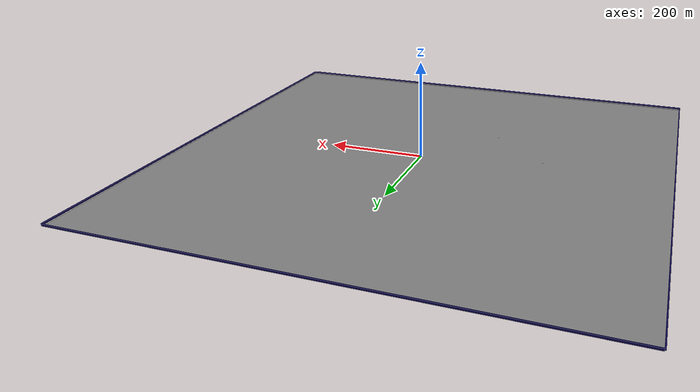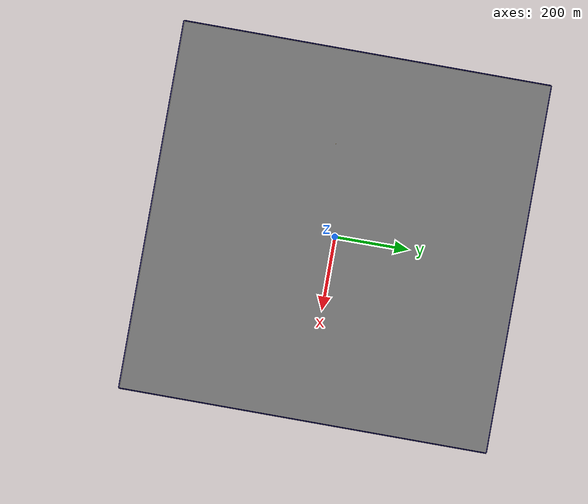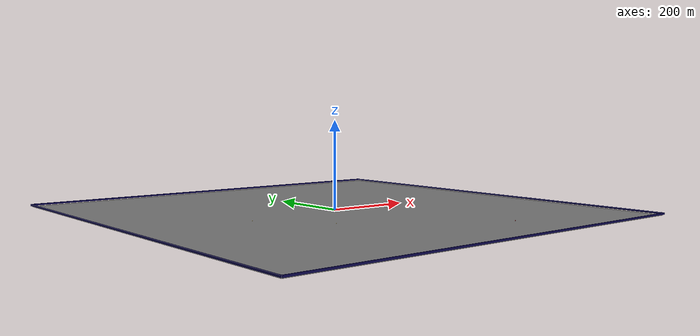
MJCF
<mujoco model="unnamed_model">
  <default>
    <default class="/" />
    <default class="border/" />
    <default class="border_1/" />
    <default class="border_2/" />
    <default class="border_3/" />
    <default class="agentplaceholder/" />
    <default class="placeholder_box/" />
    <default class="tree0/" />
    <default class="tree1/" />
    <default class="stone/" />
    <default class="stone_1/" />
  </default>
  <worldbody>
    <body name="border/">
      <body name="border/border" pos="0 501 2">
        <geom name="border/border_geom" class="border/" type="box" size="500 1 2" rgba="0.035000000000000003 0.016 0.28999999999999998 1" />
      </body>
    </body>
    <body name="border_1/">
      <body name="border_1/border" pos="0 -501 2">
        <geom name="border_1/border_geom" class="border_1/" type="box" size="500 1 2" rgba="0.035000000000000003 0.016 0.28999999999999998 1" />
      </body>
    </body>
    <body name="border_2/">
      <body name="border_2/border" pos="501 0 2">
        <geom name="border_2/border_geom" class="border_2/" type="box" size="1 500 2" rgba="0.035000000000000003 0.016 0.28999999999999998 1" />
      </body>
    </body>
    <body name="border_3/">
      <body name="border_3/border" pos="-501 0 2">
        <geom name="border_3/border_geom" class="border_3/" type="box" size="1 500 2" rgba="0.035000000000000003 0.016 0.28999999999999998 1" />
      </body>
    </body>
    <body euler="0 0 9.5387961950372357" name="agentplaceholder/">
      <joint name="agentplaceholder/boxagent_freeJoint/" class="/" type="free" />
      <body name="agentplaceholder/agentplaceholder" pos="-250 0 3" euler="0 0 0">
        <geom name="agentplaceholder/boxagent_geom" class="agentplaceholder/" type="box" size="0.5 0.5 0.5" rgba="0.94899999999999995 0.74509999999999998 0.1333 1" euler="0 0 0" />
      </body>
    </body>
    <body name="placeholder_box/">
      <body name="placeholder_box/placeholder_box" pos="-126.46449999999999 -159.76189999999997 0.5" euler="0 0 143.20290607523924">
        <geom name="placeholder_box/box_geom" class="placeholder_box/" type="box" size="0.5 0.5 0.5" rgba="0.94899999999999995 0.74509999999999998 0.1333 1" euler="0 0 0" />
      </body>
    </body>
    <body name="tree0/">
      <body name="tree0/tree0" pos="175.29859999999999 -305.03890000000001 0.10000000000000001" euler="0 0 153.40827348727947">
        <geom name="tree0/tree_geom" class="tree0/" type="box" size="0.10000000000000001 0.10000000000000001 2" rgba="1 0 0 1" />
      </body>
    </body>
    <body name="tree1/">
      <body name="tree1/tree1" pos="180.70105000000001 -358.09930000000003 0.10000000000000001" euler="0 0 66.856046041428499">
        <geom name="tree1/tree_geom" class="tree1/" type="box" size="0.10000000000000001 0.10000000000000001 2" rgba="1 0 0 1" />
      </body>
    </body>
    <body name="stone/">
      <body name="stone/stone" pos="136.58105 -238.73239999999998 0.10000000000000001" euler="0 0 2.5971257164649728">
        <geom name="stone/stone_geom" class="stone/" type="box" size="0.10000000000000001 0.10000000000000001 2" rgba="1 0 0 1" />
      </body>
    </body>
    <body name="stone_1/">
      <body name="stone_1/stone" pos="292.07470000000001 -155.22630000000004 0.10000000000000001" euler="0 0 -174.53124140218733">
        <geom name="stone_1/stone_geom" class="stone_1/" type="box" size="0.10000000000000001 0.10000000000000001 2" rgba="1 0 0 1" />
      </body>
    </body>
    <geom name="base_plane" class="/" type="plane" size="500 500 0.10000000000000001" />
  </worldbody>
</mujoco>
